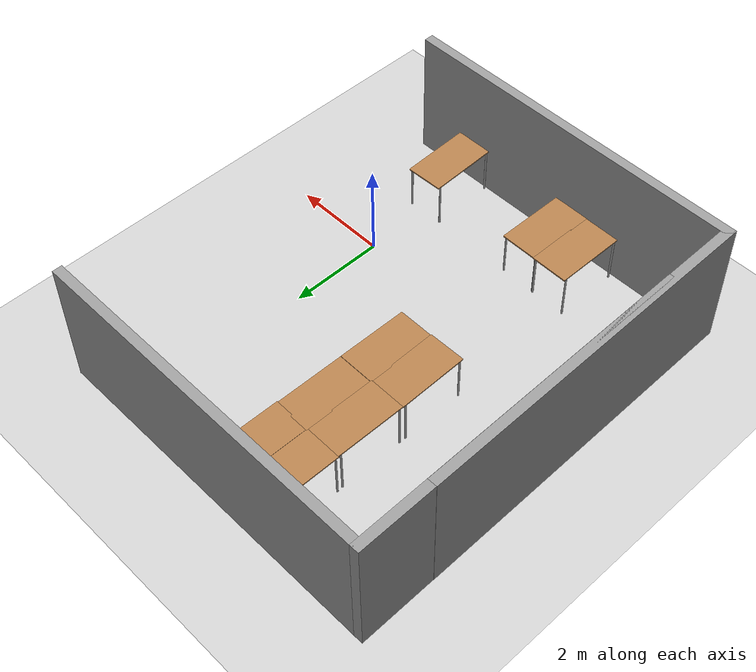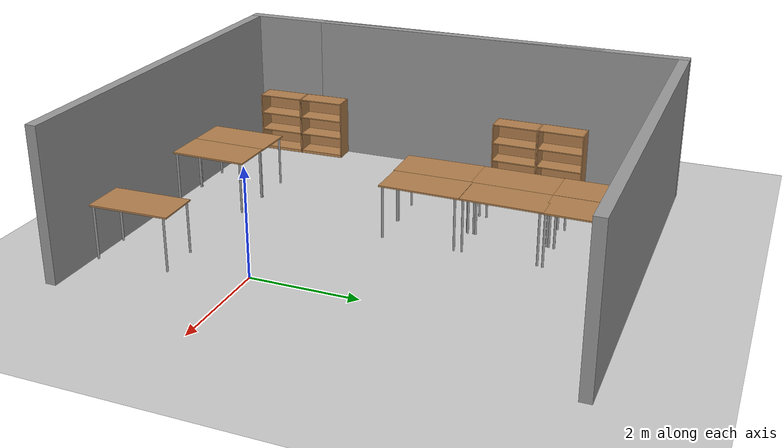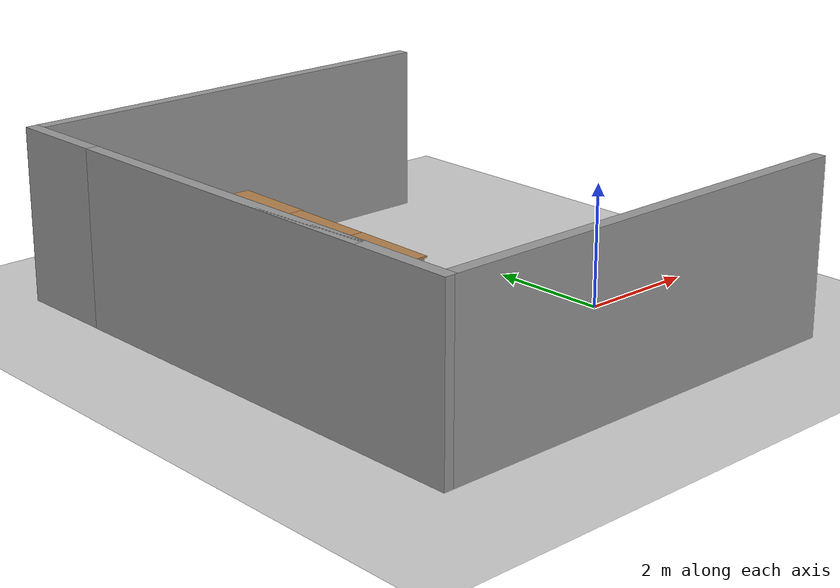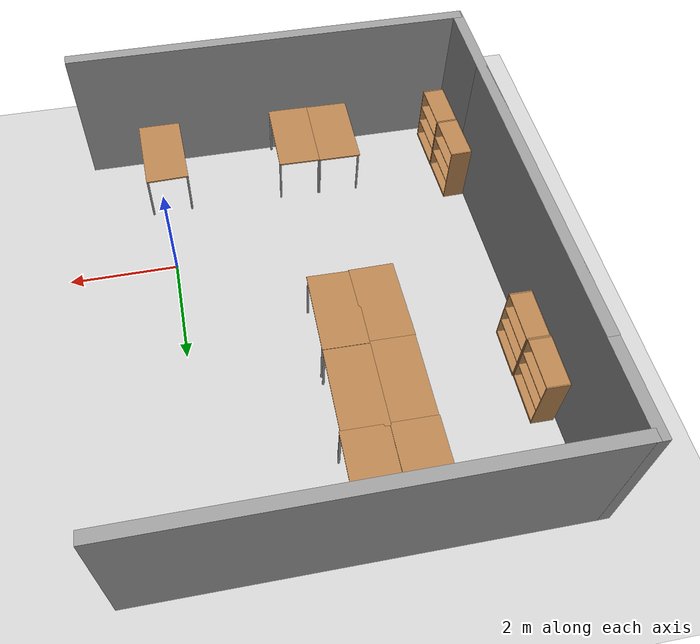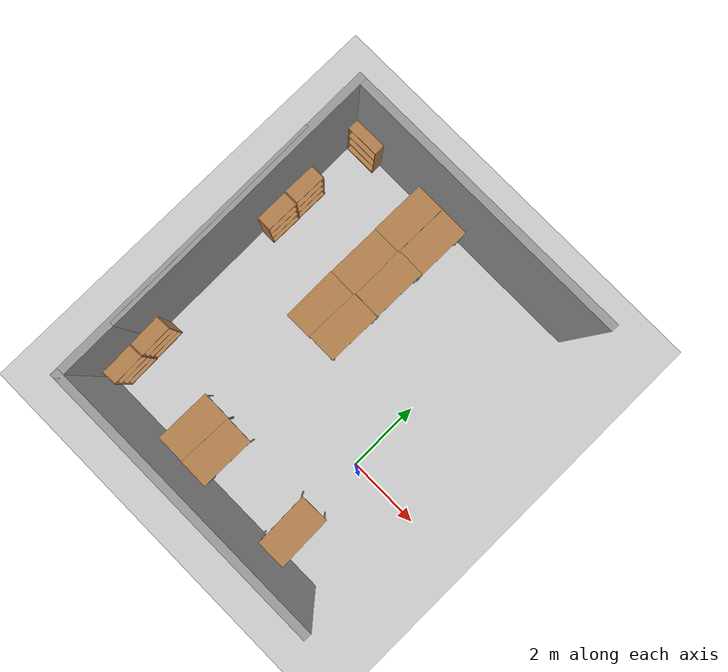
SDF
<sdf version="1.4">
 <world name="default">
  <model name="ground_plane">
   <static>1</static>
   <link name="link">
    <collision name="collision">
     <geometry><plane><normal>0 0 1</normal><size>100 100</size></plane></geometry>
     <surface><friction><ode><mu>100</mu><mu2>50</mu2></ode></friction></surface>
    </collision>
    <visual name="visual">
     <cast_shadows>0</cast_shadows>
     <geometry><plane><normal>0 0 1</normal><size>100 100</size></plane></geometry>
     <material>
      <script><uri>file://media/materials/scripts/gazebo.material</uri><name>Gazebo/Grey</name></script>
     </material>
    </visual>
    <velocity_decay><linear>0</linear><angular>0</angular></velocity_decay>
   </link>
  </model>
  <model name="grey_wall">
   <static>1</static>
   <link name="link">
    <pose>0 0 1.4 0 -0 0</pose>
    <collision name="collision"><geometry><box><size>7.5 0.2 2.8</size></box></geometry></collision>
    <visual name="visual">
     <cast_shadows>0</cast_shadows>
     <geometry><box><size>7.5 0.2 2.8</size></box></geometry>
     <material>
      <script>
       <uri>model://grey_wall/materials/scripts</uri>
       <uri>model://grey_wall/materials/textures</uri>
       <name>vrc/grey_wall</name>
      </script>
     </material>
    </visual>
    <velocity_decay><linear>0</linear><angular>0</angular></velocity_decay>
   </link>
   <pose>-2.2873 5.99729 0 0 -0 0</pose>
  </model>
  <model name="grey_wall_1">
   <static>1</static>
   <link name="link">
    <pose>0 0 1.4 0 -0 0</pose>
    <collision name="collision"><geometry><box><size>7.5 0.2 2.8</size></box></geometry></collision>
    <visual name="visual">
     <cast_shadows>0</cast_shadows>
     <geometry><box><size>7.5 0.2 2.8</size></box></geometry>
     <material>
      <script>
       <uri>model://grey_wall/materials/scripts</uri>
       <uri>model://grey_wall/materials/textures</uri>
       <name>vrc/grey_wall</name>
      </script>
     </material>
    </visual>
    <velocity_decay><linear>0</linear><angular>0</angular></velocity_decay>
   </link>
   <pose>-6.03141 2.34717 0 0 0 -1.56</pose>
  </model>
  <model name="grey_wall_2">
   <static>1</static>
   <link name="link">
    <pose>0 0 1.4 0 -0 0</pose>
    <collision name="collision"><geometry><box><size>7.5 0.2 2.8</size></box></geometry></collision>
    <visual name="visual">
     <cast_shadows>0</cast_shadows>
     <geometry><box><size>7.5 0.2 2.8</size></box></geometry>
     <material>
      <script>
       <uri>model://grey_wall/materials/scripts</uri>
       <uri>model://grey_wall/materials/textures</uri>
       <name>vrc/grey_wall</name>
      </script>
     </material>
    </visual>
    <velocity_decay><linear>0</linear><angular>0</angular></velocity_decay>
   </link>
   <pose>-6.01832 0.721265 0 0 0 -1.56</pose>
  </model>
  <model name="table">
   <static>1</static>
   <link name="link">
    <collision name="surface">
     <pose>0 0 1 0 -0 0</pose>
     <geometry><box><size>1.5 0.8 0.03</size></box></geometry>
     <surface><friction><ode><mu>0.6</mu><mu2>0.6</mu2></ode></friction></surface>
    </collision>
    <visual name="visual1">
     <pose>0 0 1 0 -0 0</pose>
     <geometry><box><size>1.5 0.8 0.03</size></box></geometry>
     <material>
      <script><uri>file://media/materials/scripts/gazebo.material</uri><name>Gazebo/Wood</name></script>
     </material>
    </visual>
    <collision name="front_left_leg">
     <pose>0.68 0.38 0.5 0 -0 0</pose>
     <geometry><cylinder><radius>0.02</radius><length>1</length></cylinder></geometry>
    </collision>
    <visual name="front_left_leg">
     <pose>0.68 0.38 0.5 0 -0 0</pose>
     <geometry><cylinder><radius>0.02</radius><length>1</length></cylinder></geometry>
     <material>
      <script><uri>file://media/materials/scripts/gazebo.material</uri><name>Gazebo/Grey</name></script>
     </material>
    </visual>
    <collision name="front_right_leg">
     <pose>0.68 -0.38 0.5 0 -0 0</pose>
     <geometry><cylinder><radius>0.02</radius><length>1</length></cylinder></geometry>
    </collision>
    <visual name="front_right_leg">
     <pose>0.68 -0.38 0.5 0 -0 0</pose>
     <geometry><cylinder><radius>0.02</radius><length>1</length></cylinder></geometry>
     <material>
      <script><uri>file://media/materials/scripts/gazebo.material</uri><name>Gazebo/Grey</name></script>
     </material>
    </visual>
    <collision name="back_right_leg">
     <pose>-0.68 -0.38 0.5 0 -0 0</pose>
     <geometry><cylinder><radius>0.02</radius><length>1</length></cylinder></geometry>
    </collision>
    <visual name="back_right_leg">
     <pose>-0.68 -0.38 0.5 0 -0 0</pose>
     <geometry><cylinder><radius>0.02</radius><length>1</length></cylinder></geometry>
     <material>
      <script><uri>file://media/materials/scripts/gazebo.material</uri><name>Gazebo/Grey</name></script>
     </material>
    </visual>
    <collision name="back_left_leg">
     <pose>-0.68 0.38 0.5 0 -0 0</pose>
     <geometry><cylinder><radius>0.02</radius><length>1</length></cylinder></geometry>
    </collision>
    <visual name="back_left_leg">
     <pose>-0.68 0.38 0.5 0 -0 0</pose>
     <geometry><cylinder><radius>0.02</radius><length>1</length></cylinder></geometry>
     <material>
      <script><uri>file://media/materials/scripts/gazebo.material</uri><name>Gazebo/Grey</name></script>
     </material>
    </visual>
    <velocity_decay><linear>0</linear><angular>0</angular></velocity_decay>
   </link>
   <pose>-3.39142 5.11799 0 0 -0 1.56319</pose>
  </model>
  <model name="table_0">
   <static>1</static>
   <link name="link">
    <collision name="surface">
     <pose>0 0 1 0 -0 0</pose>
     <geometry><box><size>1.5 0.8 0.03</size></box></geometry>
     <surface><friction><ode><mu>0.6</mu><mu2>0.6</mu2></ode></friction></surface>
    </collision>
    <visual name="visual1">
     <pose>0 0 1 0 -0 0</pose>
     <geometry><box><size>1.5 0.8 0.03</size></box></geometry>
     <material>
      <script><uri>file://media/materials/scripts/gazebo.material</uri><name>Gazebo/Wood</name></script>
     </material>
    </visual>
    <collision name="front_left_leg">
     <pose>0.68 0.38 0.5 0 -0 0</pose>
     <geometry><cylinder><radius>0.02</radius><length>1</length></cylinder></geometry>
    </collision>
    <visual name="front_left_leg">
     <pose>0.68 0.38 0.5 0 -0 0</pose>
     <geometry><cylinder><radius>0.02</radius><length>1</length></cylinder></geometry>
     <material>
      <script><uri>file://media/materials/scripts/gazebo.material</uri><name>Gazebo/Grey</name></script>
     </material>
    </visual>
    <collision name="front_right_leg">
     <pose>0.68 -0.38 0.5 0 -0 0</pose>
     <geometry><cylinder><radius>0.02</radius><length>1</length></cylinder></geometry>
    </collision>
    <visual name="front_right_leg">
     <pose>0.68 -0.38 0.5 0 -0 0</pose>
     <geometry><cylinder><radius>0.02</radius><length>1</length></cylinder></geometry>
     <material>
      <script><uri>file://media/materials/scripts/gazebo.material</uri><name>Gazebo/Grey</name></script>
     </material>
    </visual>
    <collision name="back_right_leg">
     <pose>-0.68 -0.38 0.5 0 -0 0</pose>
     <geometry><cylinder><radius>0.02</radius><length>1</length></cylinder></geometry>
    </collision>
    <visual name="back_right_leg">
     <pose>-0.68 -0.38 0.5 0 -0 0</pose>
     <geometry><cylinder><radius>0.02</radius><length>1</length></cylinder></geometry>
     <material>
      <script><uri>file://media/materials/scripts/gazebo.material</uri><name>Gazebo/Grey</name></script>
     </material>
    </visual>
    <collision name="back_left_leg">
     <pose>-0.68 0.38 0.5 0 -0 0</pose>
     <geometry><cylinder><radius>0.02</radius><length>1</length></cylinder></geometry>
    </collision>
    <visual name="back_left_leg">
     <pose>-0.68 0.38 0.5 0 -0 0</pose>
     <geometry><cylinder><radius>0.02</radius><length>1</length></cylinder></geometry>
     <material>
      <script><uri>file://media/materials/scripts/gazebo.material</uri><name>Gazebo/Grey</name></script>
     </material>
    </visual>
    <velocity_decay><linear>0</linear><angular>0</angular></velocity_decay>
   </link>
   <pose>-2.58708 5.11782 0 0 -0 1.56</pose>
  </model>
  <model name="table_1">
   <static>1</static>
   <link name="link">
    <collision name="surface">
     <pose>0 0 1 0 -0 0</pose>
     <geometry><box><size>1.5 0.8 0.03</size></box></geometry>
     <surface><friction><ode><mu>0.6</mu><mu2>0.6</mu2></ode></friction></surface>
    </collision>
    <visual name="visual1">
     <pose>0 0 1 0 -0 0</pose>
     <geometry><box><size>1.5 0.8 0.03</size></box></geometry>
     <material>
      <script><uri>file://media/materials/scripts/gazebo.material</uri><name>Gazebo/Wood</name></script>
     </material>
    </visual>
    <collision name="front_left_leg">
     <pose>0.68 0.38 0.5 0 -0 0</pose>
     <geometry><cylinder><radius>0.02</radius><length>1</length></cylinder></geometry>
    </collision>
    <visual name="front_left_leg">
     <pose>0.68 0.38 0.5 0 -0 0</pose>
     <geometry><cylinder><radius>0.02</radius><length>1</length></cylinder></geometry>
     <material>
      <script><uri>file://media/materials/scripts/gazebo.material</uri><name>Gazebo/Grey</name></script>
     </material>
    </visual>
    <collision name="front_right_leg">
     <pose>0.68 -0.38 0.5 0 -0 0</pose>
     <geometry><cylinder><radius>0.02</radius><length>1</length></cylinder></geometry>
    </collision>
    <visual name="front_right_leg">
     <pose>0.68 -0.38 0.5 0 -0 0</pose>
     <geometry><cylinder><radius>0.02</radius><length>1</length></cylinder></geometry>
     <material>
      <script><uri>file://media/materials/scripts/gazebo.material</uri><name>Gazebo/Grey</name></script>
     </material>
    </visual>
    <collision name="back_right_leg">
     <pose>-0.68 -0.38 0.5 0 -0 0</pose>
     <geometry><cylinder><radius>0.02</radius><length>1</length></cylinder></geometry>
    </collision>
    <visual name="back_right_leg">
     <pose>-0.68 -0.38 0.5 0 -0 0</pose>
     <geometry><cylinder><radius>0.02</radius><length>1</length></cylinder></geometry>
     <material>
      <script><uri>file://media/materials/scripts/gazebo.material</uri><name>Gazebo/Grey</name></script>
     </material>
    </visual>
    <collision name="back_left_leg">
     <pose>-0.68 0.38 0.5 0 -0 0</pose>
     <geometry><cylinder><radius>0.02</radius><length>1</length></cylinder></geometry>
    </collision>
    <visual name="back_left_leg">
     <pose>-0.68 0.38 0.5 0 -0 0</pose>
     <geometry><cylinder><radius>0.02</radius><length>1</length></cylinder></geometry>
     <material>
      <script><uri>file://media/materials/scripts/gazebo.material</uri><name>Gazebo/Grey</name></script>
     </material>
    </visual>
    <velocity_decay><linear>0</linear><angular>0</angular></velocity_decay>
   </link>
   <pose>-3.39295 3.62708 0 0 -0 1.56</pose>
  </model>
  <model name="table_2">
   <static>1</static>
   <link name="link">
    <collision name="surface">
     <pose>0 0 1 0 -0 0</pose>
     <geometry><box><size>1.5 0.8 0.03</size></box></geometry>
     <surface><friction><ode><mu>0.6</mu><mu2>0.6</mu2></ode></friction></surface>
    </collision>
    <visual name="visual1">
     <pose>0 0 1 0 -0 0</pose>
     <geometry><box><size>1.5 0.8 0.03</size></box></geometry>
     <material>
      <script><uri>file://media/materials/scripts/gazebo.material</uri><name>Gazebo/Wood</name></script>
     </material>
    </visual>
    <collision name="front_left_leg">
     <pose>0.68 0.38 0.5 0 -0 0</pose>
     <geometry><cylinder><radius>0.02</radius><length>1</length></cylinder></geometry>
    </collision>
    <visual name="front_left_leg">
     <pose>0.68 0.38 0.5 0 -0 0</pose>
     <geometry><cylinder><radius>0.02</radius><length>1</length></cylinder></geometry>
     <material>
      <script><uri>file://media/materials/scripts/gazebo.material</uri><name>Gazebo/Grey</name></script>
     </material>
    </visual>
    <collision name="front_right_leg">
     <pose>0.68 -0.38 0.5 0 -0 0</pose>
     <geometry><cylinder><radius>0.02</radius><length>1</length></cylinder></geometry>
    </collision>
    <visual name="front_right_leg">
     <pose>0.68 -0.38 0.5 0 -0 0</pose>
     <geometry><cylinder><radius>0.02</radius><length>1</length></cylinder></geometry>
     <material>
      <script><uri>file://media/materials/scripts/gazebo.material</uri><name>Gazebo/Grey</name></script>
     </material>
    </visual>
    <collision name="back_right_leg">
     <pose>-0.68 -0.38 0.5 0 -0 0</pose>
     <geometry><cylinder><radius>0.02</radius><length>1</length></cylinder></geometry>
    </collision>
    <visual name="back_right_leg">
     <pose>-0.68 -0.38 0.5 0 -0 0</pose>
     <geometry><cylinder><radius>0.02</radius><length>1</length></cylinder></geometry>
     <material>
      <script><uri>file://media/materials/scripts/gazebo.material</uri><name>Gazebo/Grey</name></script>
     </material>
    </visual>
    <collision name="back_left_leg">
     <pose>-0.68 0.38 0.5 0 -0 0</pose>
     <geometry><cylinder><radius>0.02</radius><length>1</length></cylinder></geometry>
    </collision>
    <visual name="back_left_leg">
     <pose>-0.68 0.38 0.5 0 -0 0</pose>
     <geometry><cylinder><radius>0.02</radius><length>1</length></cylinder></geometry>
     <material>
      <script><uri>file://media/materials/scripts/gazebo.material</uri><name>Gazebo/Grey</name></script>
     </material>
    </visual>
    <velocity_decay><linear>0</linear><angular>0</angular></velocity_decay>
   </link>
   <pose>-2.62064 3.65825 0 0 -0 1.56</pose>
  </model>
  <model name="table_3">
   <static>1</static>
   <link name="link">
    <collision name="surface">
     <pose>0 0 1 0 -0 0</pose>
     <geometry><box><size>1.5 0.8 0.03</size></box></geometry>
     <surface><friction><ode><mu>0.6</mu><mu2>0.6</mu2></ode></friction></surface>
    </collision>
    <visual name="visual1">
     <pose>0 0 1 0 -0 0</pose>
     <geometry><box><size>1.5 0.8 0.03</size></box></geometry>
     <material>
      <script><uri>file://media/materials/scripts/gazebo.material</uri><name>Gazebo/Wood</name></script>
     </material>
    </visual>
    <collision name="front_left_leg">
     <pose>0.68 0.38 0.5 0 -0 0</pose>
     <geometry><cylinder><radius>0.02</radius><length>1</length></cylinder></geometry>
    </collision>
    <visual name="front_left_leg">
     <pose>0.68 0.38 0.5 0 -0 0</pose>
     <geometry><cylinder><radius>0.02</radius><length>1</length></cylinder></geometry>
     <material>
      <script><uri>file://media/materials/scripts/gazebo.material</uri><name>Gazebo/Grey</name></script>
     </material>
    </visual>
    <collision name="front_right_leg">
     <pose>0.68 -0.38 0.5 0 -0 0</pose>
     <geometry><cylinder><radius>0.02</radius><length>1</length></cylinder></geometry>
    </collision>
    <visual name="front_right_leg">
     <pose>0.68 -0.38 0.5 0 -0 0</pose>
     <geometry><cylinder><radius>0.02</radius><length>1</length></cylinder></geometry>
     <material>
      <script><uri>file://media/materials/scripts/gazebo.material</uri><name>Gazebo/Grey</name></script>
     </material>
    </visual>
    <collision name="back_right_leg">
     <pose>-0.68 -0.38 0.5 0 -0 0</pose>
     <geometry><cylinder><radius>0.02</radius><length>1</length></cylinder></geometry>
    </collision>
    <visual name="back_right_leg">
     <pose>-0.68 -0.38 0.5 0 -0 0</pose>
     <geometry><cylinder><radius>0.02</radius><length>1</length></cylinder></geometry>
     <material>
      <script><uri>file://media/materials/scripts/gazebo.material</uri><name>Gazebo/Grey</name></script>
     </material>
    </visual>
    <collision name="back_left_leg">
     <pose>-0.68 0.38 0.5 0 -0 0</pose>
     <geometry><cylinder><radius>0.02</radius><length>1</length></cylinder></geometry>
    </collision>
    <visual name="back_left_leg">
     <pose>-0.68 0.38 0.5 0 -0 0</pose>
     <geometry><cylinder><radius>0.02</radius><length>1</length></cylinder></geometry>
     <material>
      <script><uri>file://media/materials/scripts/gazebo.material</uri><name>Gazebo/Grey</name></script>
     </material>
    </visual>
    <velocity_decay><linear>0</linear><angular>0</angular></velocity_decay>
   </link>
   <pose>-3.40002 2.13471 0 0 0 -1.56</pose>
  </model>
  <model name="table_4">
   <static>1</static>
   <link name="link">
    <collision name="surface">
     <pose>0 0 1 0 -0 0</pose>
     <geometry><box><size>1.5 0.8 0.03</size></box></geometry>
     <surface><friction><ode><mu>0.6</mu><mu2>0.6</mu2></ode></friction></surface>
    </collision>
    <visual name="visual1">
     <pose>0 0 1 0 -0 0</pose>
     <geometry><box><size>1.5 0.8 0.03</size></box></geometry>
     <material>
      <script><uri>file://media/materials/scripts/gazebo.material</uri><name>Gazebo/Wood</name></script>
     </material>
    </visual>
    <collision name="front_left_leg">
     <pose>0.68 0.38 0.5 0 -0 0</pose>
     <geometry><cylinder><radius>0.02</radius><length>1</length></cylinder></geometry>
    </collision>
    <visual name="front_left_leg">
     <pose>0.68 0.38 0.5 0 -0 0</pose>
     <geometry><cylinder><radius>0.02</radius><length>1</length></cylinder></geometry>
     <material>
      <script><uri>file://media/materials/scripts/gazebo.material</uri><name>Gazebo/Grey</name></script>
     </material>
    </visual>
    <collision name="front_right_leg">
     <pose>0.68 -0.38 0.5 0 -0 0</pose>
     <geometry><cylinder><radius>0.02</radius><length>1</length></cylinder></geometry>
    </collision>
    <visual name="front_right_leg">
     <pose>0.68 -0.38 0.5 0 -0 0</pose>
     <geometry><cylinder><radius>0.02</radius><length>1</length></cylinder></geometry>
     <material>
      <script><uri>file://media/materials/scripts/gazebo.material</uri><name>Gazebo/Grey</name></script>
     </material>
    </visual>
    <collision name="back_right_leg">
     <pose>-0.68 -0.38 0.5 0 -0 0</pose>
     <geometry><cylinder><radius>0.02</radius><length>1</length></cylinder></geometry>
    </collision>
    <visual name="back_right_leg">
     <pose>-0.68 -0.38 0.5 0 -0 0</pose>
     <geometry><cylinder><radius>0.02</radius><length>1</length></cylinder></geometry>
     <material>
      <script><uri>file://media/materials/scripts/gazebo.material</uri><name>Gazebo/Grey</name></script>
     </material>
    </visual>
    <collision name="back_left_leg">
     <pose>-0.68 0.38 0.5 0 -0 0</pose>
     <geometry><cylinder><radius>0.02</radius><length>1</length></cylinder></geometry>
    </collision>
    <visual name="back_left_leg">
     <pose>-0.68 0.38 0.5 0 -0 0</pose>
     <geometry><cylinder><radius>0.02</radius><length>1</length></cylinder></geometry>
     <material>
      <script><uri>file://media/materials/scripts/gazebo.material</uri><name>Gazebo/Grey</name></script>
     </material>
    </visual>
    <velocity_decay><linear>0</linear><angular>0</angular></velocity_decay>
   </link>
   <pose>-2.63477 2.15257 0 0 -0 1.56</pose>
  </model>
  <model name="bookshelf">
   <static>1</static>
   <link name="link">
    <inertial><mass>1</mass></inertial>
    <collision name="back">
     <pose>0 0.005 0.6 0 -0 0</pose>
     <geometry><box><size>0.9 0.01 1.2</size></box></geometry>
    </collision>
    <visual name="visual1">
     <pose>0 0.005 0.6 0 -0 0</pose>
     <geometry><box><size>0.9 0.01 1.2</size></box></geometry>
     <material>
      <script><uri>file://media/materials/scripts/gazebo.material</uri><name>Gazebo/Wood</name></script>
     </material>
    </visual>
    <collision name="left_side">
     <pose>0.45 -0.195 0.6 0 -0 0</pose>
     <geometry><box><size>0.02 0.4 1.2</size></box></geometry>
    </collision>
    <visual name="visual2">
     <pose>0.45 -0.195 0.6 0 -0 0</pose>
     <geometry><box><size>0.02 0.4 1.2</size></box></geometry>
     <material>
      <script><uri>file://media/materials/scripts/gazebo.material</uri><name>Gazebo/Wood</name></script>
     </material>
    </visual>
    <collision name="right_side">
     <pose>-0.45 -0.195 0.6 0 -0 0</pose>
     <geometry><box><size>0.02 0.4 1.2</size></box></geometry>
    </collision>
    <visual name="visual3">
     <pose>-0.45 -0.195 0.6 0 -0 0</pose>
     <geometry><box><size>0.02 0.4 1.2</size></box></geometry>
     <material>
      <script><uri>file://media/materials/scripts/gazebo.material</uri><name>Gazebo/Wood</name></script>
     </material>
    </visual>
    <collision name="bottom">
     <pose>0 -0.195 0.03 0 -0 0</pose>
     <geometry><box><size>0.88 0.4 0.06</size></box></geometry>
    </collision>
    <visual name="visual4">
     <pose>0 -0.195 0.03 0 -0 0</pose>
     <geometry><box><size>0.88 0.4 0.06</size></box></geometry>
     <material>
      <script><uri>file://media/materials/scripts/gazebo.material</uri><name>Gazebo/Wood</name></script>
     </material>
    </visual>
    <collision name="top">
     <pose>0 -0.195 1.19 0 -0 0</pose>
     <geometry><box><size>0.88 0.4 0.02</size></box></geometry>
    </collision>
    <visual name="visual5">
     <pose>0 -0.195 1.19 0 -0 0</pose>
     <geometry><box><size>0.88 0.4 0.02</size></box></geometry>
     <material>
      <script><uri>file://media/materials/scripts/gazebo.material</uri><name>Gazebo/Wood</name></script>
     </material>
    </visual>
    <collision name="low_shelf">
     <pose>0 -0.195 0.43 0 -0 0</pose>
     <geometry><box><size>0.88 0.4 0.02</size></box></geometry>
    </collision>
    <visual name="visual6">
     <pose>0 -0.195 0.43 0 -0 0</pose>
     <geometry><box><size>0.88 0.4 0.02</size></box></geometry>
     <material>
      <script><uri>file://media/materials/scripts/gazebo.material</uri><name>Gazebo/Wood</name></script>
     </material>
    </visual>
    <collision name="high_shelf">
     <pose>0 -0.195 0.8 0 -0 0</pose>
     <geometry><box><size>0.88 0.4 0.02</size></box></geometry>
    </collision>
    <visual name="visual7">
     <pose>0 -0.195 0.8 0 -0 0</pose>
     <geometry><box><size>0.88 0.4 0.02</size></box></geometry>
     <material>
      <script><uri>file://media/materials/scripts/gazebo.material</uri><name>Gazebo/Wood</name></script>
     </material>
    </visual>
    <velocity_decay><linear>0</linear><angular>0</angular></velocity_decay>
   </link>
   <pose>-5.83555 -2.19567 0 0 -0 1.6</pose>
  </model>
  <model name="bookshelf_0">
   <static>1</static>
   <link name="link">
    <inertial><mass>1</mass></inertial>
    <collision name="back">
     <pose>0 0.005 0.6 0 -0 0</pose>
     <geometry><box><size>0.9 0.01 1.2</size></box></geometry>
    </collision>
    <visual name="visual1">
     <pose>0 0.005 0.6 0 -0 0</pose>
     <geometry><box><size>0.9 0.01 1.2</size></box></geometry>
     <material>
      <script><uri>file://media/materials/scripts/gazebo.material</uri><name>Gazebo/Wood</name></script>
     </material>
    </visual>
    <collision name="left_side">
     <pose>0.45 -0.195 0.6 0 -0 0</pose>
     <geometry><box><size>0.02 0.4 1.2</size></box></geometry>
    </collision>
    <visual name="visual2">
     <pose>0.45 -0.195 0.6 0 -0 0</pose>
     <geometry><box><size>0.02 0.4 1.2</size></box></geometry>
     <material>
      <script><uri>file://media/materials/scripts/gazebo.material</uri><name>Gazebo/Wood</name></script>
     </material>
    </visual>
    <collision name="right_side">
     <pose>-0.45 -0.195 0.6 0 -0 0</pose>
     <geometry><box><size>0.02 0.4 1.2</size></box></geometry>
    </collision>
    <visual name="visual3">
     <pose>-0.45 -0.195 0.6 0 -0 0</pose>
     <geometry><box><size>0.02 0.4 1.2</size></box></geometry>
     <material>
      <script><uri>file://media/materials/scripts/gazebo.material</uri><name>Gazebo/Wood</name></script>
     </material>
    </visual>
    <collision name="bottom">
     <pose>0 -0.195 0.03 0 -0 0</pose>
     <geometry><box><size>0.88 0.4 0.06</size></box></geometry>
    </collision>
    <visual name="visual4">
     <pose>0 -0.195 0.03 0 -0 0</pose>
     <geometry><box><size>0.88 0.4 0.06</size></box></geometry>
     <material>
      <script><uri>file://media/materials/scripts/gazebo.material</uri><name>Gazebo/Wood</name></script>
     </material>
    </visual>
    <collision name="top">
     <pose>0 -0.195 1.19 0 -0 0</pose>
     <geometry><box><size>0.88 0.4 0.02</size></box></geometry>
    </collision>
    <visual name="visual5">
     <pose>0 -0.195 1.19 0 -0 0</pose>
     <geometry><box><size>0.88 0.4 0.02</size></box></geometry>
     <material>
      <script><uri>file://media/materials/scripts/gazebo.material</uri><name>Gazebo/Wood</name></script>
     </material>
    </visual>
    <collision name="low_shelf">
     <pose>0 -0.195 0.43 0 -0 0</pose>
     <geometry><box><size>0.88 0.4 0.02</size></box></geometry>
    </collision>
    <visual name="visual6">
     <pose>0 -0.195 0.43 0 -0 0</pose>
     <geometry><box><size>0.88 0.4 0.02</size></box></geometry>
     <material>
      <script><uri>file://media/materials/scripts/gazebo.material</uri><name>Gazebo/Wood</name></script>
     </material>
    </visual>
    <collision name="high_shelf">
     <pose>0 -0.195 0.8 0 -0 0</pose>
     <geometry><box><size>0.88 0.4 0.02</size></box></geometry>
    </collision>
    <visual name="visual7">
     <pose>0 -0.195 0.8 0 -0 0</pose>
     <geometry><box><size>0.88 0.4 0.02</size></box></geometry>
     <material>
      <script><uri>file://media/materials/scripts/gazebo.material</uri><name>Gazebo/Wood</name></script>
     </material>
    </visual>
    <velocity_decay><linear>0</linear><angular>0</angular></velocity_decay>
   </link>
   <pose>-5.86607 -1.27752 0 0 -0 1.6</pose>
  </model>
  <model name="grey_wall_3">
   <static>1</static>
   <link name="link">
    <pose>0 0 1.4 0 -0 0</pose>
    <collision name="collision"><geometry><box><size>7.5 0.2 2.8</size></box></geometry></collision>
    <visual name="visual">
     <cast_shadows>0</cast_shadows>
     <geometry><box><size>7.5 0.2 2.8</size></box></geometry>
     <material>
      <script>
       <uri>model://grey_wall/materials/scripts</uri>
       <uri>model://grey_wall/materials/textures</uri>
       <name>vrc/grey_wall</name>
      </script>
     </material>
    </visual>
    <velocity_decay><linear>0</linear><angular>0</angular></velocity_decay>
   </link>
   <pose>-2.30738 -2.92793 0 0 -0 0</pose>
  </model>
  <model name="table_11">
   <static>1</static>
   <link name="link">
    <collision name="surface">
     <pose>0 0 1 0 -0 0</pose>
     <geometry><box><size>1.5 0.8 0.03</size></box></geometry>
     <surface><friction><ode><mu>0.6</mu><mu2>0.6</mu2></ode></friction></surface>
    </collision>
    <visual name="visual1">
     <pose>0 0 1 0 -0 0</pose>
     <geometry><box><size>1.5 0.8 0.03</size></box></geometry>
     <material>
      <script><uri>file://media/materials/scripts/gazebo.material</uri><name>Gazebo/Wood</name></script>
     </material>
    </visual>
    <collision name="front_left_leg">
     <pose>0.68 0.38 0.5 0 -0 0</pose>
     <geometry><cylinder><radius>0.02</radius><length>1</length></cylinder></geometry>
    </collision>
    <visual name="front_left_leg">
     <pose>0.68 0.38 0.5 0 -0 0</pose>
     <geometry><cylinder><radius>0.02</radius><length>1</length></cylinder></geometry>
     <material>
      <script><uri>file://media/materials/scripts/gazebo.material</uri><name>Gazebo/Grey</name></script>
     </material>
    </visual>
    <collision name="front_right_leg">
     <pose>0.68 -0.38 0.5 0 -0 0</pose>
     <geometry><cylinder><radius>0.02</radius><length>1</length></cylinder></geometry>
    </collision>
    <visual name="front_right_leg">
     <pose>0.68 -0.38 0.5 0 -0 0</pose>
     <geometry><cylinder><radius>0.02</radius><length>1</length></cylinder></geometry>
     <material>
      <script><uri>file://media/materials/scripts/gazebo.material</uri><name>Gazebo/Grey</name></script>
     </material>
    </visual>
    <collision name="back_right_leg">
     <pose>-0.68 -0.38 0.5 0 -0 0</pose>
     <geometry><cylinder><radius>0.02</radius><length>1</length></cylinder></geometry>
    </collision>
    <visual name="back_right_leg">
     <pose>-0.68 -0.38 0.5 0 -0 0</pose>
     <geometry><cylinder><radius>0.02</radius><length>1</length></cylinder></geometry>
     <material>
      <script><uri>file://media/materials/scripts/gazebo.material</uri><name>Gazebo/Grey</name></script>
     </material>
    </visual>
    <collision name="back_left_leg">
     <pose>-0.68 0.38 0.5 0 -0 0</pose>
     <geometry><cylinder><radius>0.02</radius><length>1</length></cylinder></geometry>
    </collision>
    <visual name="back_left_leg">
     <pose>-0.68 0.38 0.5 0 -0 0</pose>
     <geometry><cylinder><radius>0.02</radius><length>1</length></cylinder></geometry>
     <material>
      <script><uri>file://media/materials/scripts/gazebo.material</uri><name>Gazebo/Grey</name></script>
     </material>
    </visual>
    <velocity_decay><linear>0</linear><angular>0</angular></velocity_decay>
   </link>
   <pose>-3.4162 -2.06005 0 0 -0 1.56</pose>
  </model>
  <model name="table_12">
   <static>1</static>
   <link name="link">
    <collision name="surface">
     <pose>0 0 1 0 -0 0</pose>
     <geometry><box><size>1.5 0.8 0.03</size></box></geometry>
     <surface><friction><ode><mu>0.6</mu><mu2>0.6</mu2></ode></friction></surface>
    </collision>
    <visual name="visual1">
     <pose>0 0 1 0 -0 0</pose>
     <geometry><box><size>1.5 0.8 0.03</size></box></geometry>
     <material>
      <script><uri>file://media/materials/scripts/gazebo.material</uri><name>Gazebo/Wood</name></script>
     </material>
    </visual>
    <collision name="front_left_leg">
     <pose>0.68 0.38 0.5 0 -0 0</pose>
     <geometry><cylinder><radius>0.02</radius><length>1</length></cylinder></geometry>
    </collision>
    <visual name="front_left_leg">
     <pose>0.68 0.38 0.5 0 -0 0</pose>
     <geometry><cylinder><radius>0.02</radius><length>1</length></cylinder></geometry>
     <material>
      <script><uri>file://media/materials/scripts/gazebo.material</uri><name>Gazebo/Grey</name></script>
     </material>
    </visual>
    <collision name="front_right_leg">
     <pose>0.68 -0.38 0.5 0 -0 0</pose>
     <geometry><cylinder><radius>0.02</radius><length>1</length></cylinder></geometry>
    </collision>
    <visual name="front_right_leg">
     <pose>0.68 -0.38 0.5 0 -0 0</pose>
     <geometry><cylinder><radius>0.02</radius><length>1</length></cylinder></geometry>
     <material>
      <script><uri>file://media/materials/scripts/gazebo.material</uri><name>Gazebo/Grey</name></script>
     </material>
    </visual>
    <collision name="back_right_leg">
     <pose>-0.68 -0.38 0.5 0 -0 0</pose>
     <geometry><cylinder><radius>0.02</radius><length>1</length></cylinder></geometry>
    </collision>
    <visual name="back_right_leg">
     <pose>-0.68 -0.38 0.5 0 -0 0</pose>
     <geometry><cylinder><radius>0.02</radius><length>1</length></cylinder></geometry>
     <material>
      <script><uri>file://media/materials/scripts/gazebo.material</uri><name>Gazebo/Grey</name></script>
     </material>
    </visual>
    <collision name="back_left_leg">
     <pose>-0.68 0.38 0.5 0 -0 0</pose>
     <geometry><cylinder><radius>0.02</radius><length>1</length></cylinder></geometry>
    </collision>
    <visual name="back_left_leg">
     <pose>-0.68 0.38 0.5 0 -0 0</pose>
     <geometry><cylinder><radius>0.02</radius><length>1</length></cylinder></geometry>
     <material>
      <script><uri>file://media/materials/scripts/gazebo.material</uri><name>Gazebo/Grey</name></script>
     </material>
    </visual>
    <velocity_decay><linear>0</linear><angular>0</angular></velocity_decay>
   </link>
   <pose>-2.63578 -2.07529 0 0 -0 1.56</pose>
  </model>
  <model name="table_13">
   <static>1</static>
   <link name="link">
    <collision name="surface">
     <pose>0 0 1 0 -0 0</pose>
     <geometry><box><size>1.5 0.8 0.03</size></box></geometry>
     <surface><friction><ode><mu>0.6</mu><mu2>0.6</mu2></ode></friction></surface>
    </collision>
    <visual name="visual1">
     <pose>0 0 1 0 -0 0</pose>
     <geometry><box><size>1.5 0.8 0.03</size></box></geometry>
     <material>
      <script><uri>file://media/materials/scripts/gazebo.material</uri><name>Gazebo/Wood</name></script>
     </material>
    </visual>
    <collision name="front_left_leg">
     <pose>0.68 0.38 0.5 0 -0 0</pose>
     <geometry><cylinder><radius>0.02</radius><length>1</length></cylinder></geometry>
    </collision>
    <visual name="front_left_leg">
     <pose>0.68 0.38 0.5 0 -0 0</pose>
     <geometry><cylinder><radius>0.02</radius><length>1</length></cylinder></geometry>
     <material>
      <script><uri>file://media/materials/scripts/gazebo.material</uri><name>Gazebo/Grey</name></script>
     </material>
    </visual>
    <collision name="front_right_leg">
     <pose>0.68 -0.38 0.5 0 -0 0</pose>
     <geometry><cylinder><radius>0.02</radius><length>1</length></cylinder></geometry>
    </collision>
    <visual name="front_right_leg">
     <pose>0.68 -0.38 0.5 0 -0 0</pose>
     <geometry><cylinder><radius>0.02</radius><length>1</length></cylinder></geometry>
     <material>
      <script><uri>file://media/materials/scripts/gazebo.material</uri><name>Gazebo/Grey</name></script>
     </material>
    </visual>
    <collision name="back_right_leg">
     <pose>-0.68 -0.38 0.5 0 -0 0</pose>
     <geometry><cylinder><radius>0.02</radius><length>1</length></cylinder></geometry>
    </collision>
    <visual name="back_right_leg">
     <pose>-0.68 -0.38 0.5 0 -0 0</pose>
     <geometry><cylinder><radius>0.02</radius><length>1</length></cylinder></geometry>
     <material>
      <script><uri>file://media/materials/scripts/gazebo.material</uri><name>Gazebo/Grey</name></script>
     </material>
    </visual>
    <collision name="back_left_leg">
     <pose>-0.68 0.38 0.5 0 -0 0</pose>
     <geometry><cylinder><radius>0.02</radius><length>1</length></cylinder></geometry>
    </collision>
    <visual name="back_left_leg">
     <pose>-0.68 0.38 0.5 0 -0 0</pose>
     <geometry><cylinder><radius>0.02</radius><length>1</length></cylinder></geometry>
     <material>
      <script><uri>file://media/materials/scripts/gazebo.material</uri><name>Gazebo/Grey</name></script>
     </material>
    </visual>
    <velocity_decay><linear>0</linear><angular>0</angular></velocity_decay>
   </link>
   <pose>-0.0401 -2.08628 0 0 -0 1.6</pose>
  </model>
  <model name="bookshelf_5">
   <static>1</static>
   <link name="link">
    <inertial><mass>1</mass></inertial>
    <collision name="back">
     <pose>0 0.005 0.6 0 -0 0</pose>
     <geometry><box><size>0.9 0.01 1.2</size></box></geometry>
    </collision>
    <visual name="visual1">
     <pose>0 0.005 0.6 0 -0 0</pose>
     <geometry><box><size>0.9 0.01 1.2</size></box></geometry>
     <material>
      <script><uri>file://media/materials/scripts/gazebo.material</uri><name>Gazebo/Wood</name></script>
     </material>
    </visual>
    <collision name="left_side">
     <pose>0.45 -0.195 0.6 0 -0 0</pose>
     <geometry><box><size>0.02 0.4 1.2</size></box></geometry>
    </collision>
    <visual name="visual2">
     <pose>0.45 -0.195 0.6 0 -0 0</pose>
     <geometry><box><size>0.02 0.4 1.2</size></box></geometry>
     <material>
      <script><uri>file://media/materials/scripts/gazebo.material</uri><name>Gazebo/Wood</name></script>
     </material>
    </visual>
    <collision name="right_side">
     <pose>-0.45 -0.195 0.6 0 -0 0</pose>
     <geometry><box><size>0.02 0.4 1.2</size></box></geometry>
    </collision>
    <visual name="visual3">
     <pose>-0.45 -0.195 0.6 0 -0 0</pose>
     <geometry><box><size>0.02 0.4 1.2</size></box></geometry>
     <material>
      <script><uri>file://media/materials/scripts/gazebo.material</uri><name>Gazebo/Wood</name></script>
     </material>
    </visual>
    <collision name="bottom">
     <pose>0 -0.195 0.03 0 -0 0</pose>
     <geometry><box><size>0.88 0.4 0.06</size></box></geometry>
    </collision>
    <visual name="visual4">
     <pose>0 -0.195 0.03 0 -0 0</pose>
     <geometry><box><size>0.88 0.4 0.06</size></box></geometry>
     <material>
      <script><uri>file://media/materials/scripts/gazebo.material</uri><name>Gazebo/Wood</name></script>
     </material>
    </visual>
    <collision name="top">
     <pose>0 -0.195 1.19 0 -0 0</pose>
     <geometry><box><size>0.88 0.4 0.02</size></box></geometry>
    </collision>
    <visual name="visual5">
     <pose>0 -0.195 1.19 0 -0 0</pose>
     <geometry><box><size>0.88 0.4 0.02</size></box></geometry>
     <material>
      <script><uri>file://media/materials/scripts/gazebo.material</uri><name>Gazebo/Wood</name></script>
     </material>
    </visual>
    <collision name="low_shelf">
     <pose>0 -0.195 0.43 0 -0 0</pose>
     <geometry><box><size>0.88 0.4 0.02</size></box></geometry>
    </collision>
    <visual name="visual6">
     <pose>0 -0.195 0.43 0 -0 0</pose>
     <geometry><box><size>0.88 0.4 0.02</size></box></geometry>
     <material>
      <script><uri>file://media/materials/scripts/gazebo.material</uri><name>Gazebo/Wood</name></script>
     </material>
    </visual>
    <collision name="high_shelf">
     <pose>0 -0.195 0.8 0 -0 0</pose>
     <geometry><box><size>0.88 0.4 0.02</size></box></geometry>
    </collision>
    <visual name="visual7">
     <pose>0 -0.195 0.8 0 -0 0</pose>
     <geometry><box><size>0.88 0.4 0.02</size></box></geometry>
     <material>
      <script><uri>file://media/materials/scripts/gazebo.material</uri><name>Gazebo/Wood</name></script>
     </material>
    </visual>
    <velocity_decay><linear>0</linear><angular>0</angular></velocity_decay>
   </link>
   <pose>-5.50577 6 0 0 -0 0</pose>
  </model>
  <model name="bookshelf_6">
   <static>1</static>
   <link name="link">
    <inertial><mass>1</mass></inertial>
    <collision name="back">
     <pose>0 0.005 0.6 0 -0 0</pose>
     <geometry><box><size>0.9 0.01 1.2</size></box></geometry>
    </collision>
    <visual name="visual1">
     <pose>0 0.005 0.6 0 -0 0</pose>
     <geometry><box><size>0.9 0.01 1.2</size></box></geometry>
     <material>
      <script><uri>file://media/materials/scripts/gazebo.material</uri><name>Gazebo/Wood</name></script>
     </material>
    </visual>
    <collision name="left_side">
     <pose>0.45 -0.195 0.6 0 -0 0</pose>
     <geometry><box><size>0.02 0.4 1.2</size></box></geometry>
    </collision>
    <visual name="visual2">
     <pose>0.45 -0.195 0.6 0 -0 0</pose>
     <geometry><box><size>0.02 0.4 1.2</size></box></geometry>
     <material>
      <script><uri>file://media/materials/scripts/gazebo.material</uri><name>Gazebo/Wood</name></script>
     </material>
    </visual>
    <collision name="right_side">
     <pose>-0.45 -0.195 0.6 0 -0 0</pose>
     <geometry><box><size>0.02 0.4 1.2</size></box></geometry>
    </collision>
    <visual name="visual3">
     <pose>-0.45 -0.195 0.6 0 -0 0</pose>
     <geometry><box><size>0.02 0.4 1.2</size></box></geometry>
     <material>
      <script><uri>file://media/materials/scripts/gazebo.material</uri><name>Gazebo/Wood</name></script>
     </material>
    </visual>
    <collision name="bottom">
     <pose>0 -0.195 0.03 0 -0 0</pose>
     <geometry><box><size>0.88 0.4 0.06</size></box></geometry>
    </collision>
    <visual name="visual4">
     <pose>0 -0.195 0.03 0 -0 0</pose>
     <geometry><box><size>0.88 0.4 0.06</size></box></geometry>
     <material>
      <script><uri>file://media/materials/scripts/gazebo.material</uri><name>Gazebo/Wood</name></script>
     </material>
    </visual>
    <collision name="top">
     <pose>0 -0.195 1.19 0 -0 0</pose>
     <geometry><box><size>0.88 0.4 0.02</size></box></geometry>
    </collision>
    <visual name="visual5">
     <pose>0 -0.195 1.19 0 -0 0</pose>
     <geometry><box><size>0.88 0.4 0.02</size></box></geometry>
     <material>
      <script><uri>file://media/materials/scripts/gazebo.material</uri><name>Gazebo/Wood</name></script>
     </material>
    </visual>
    <collision name="low_shelf">
     <pose>0 -0.195 0.43 0 -0 0</pose>
     <geometry><box><size>0.88 0.4 0.02</size></box></geometry>
    </collision>
    <visual name="visual6">
     <pose>0 -0.195 0.43 0 -0 0</pose>
     <geometry><box><size>0.88 0.4 0.02</size></box></geometry>
     <material>
      <script><uri>file://media/materials/scripts/gazebo.material</uri><name>Gazebo/Wood</name></script>
     </material>
    </visual>
    <collision name="high_shelf">
     <pose>0 -0.195 0.8 0 -0 0</pose>
     <geometry><box><size>0.88 0.4 0.02</size></box></geometry>
    </collision>
    <visual name="visual7">
     <pose>0 -0.195 0.8 0 -0 0</pose>
     <geometry><box><size>0.88 0.4 0.02</size></box></geometry>
     <material>
      <script><uri>file://media/materials/scripts/gazebo.material</uri><name>Gazebo/Wood</name></script>
     </material>
    </visual>
    <velocity_decay><linear>0</linear><angular>0</angular></velocity_decay>
   </link>
   <pose>-5.90625 2.95779 0 0 -0 1.56</pose>
  </model>
  <model name="bookshelf_7">
   <static>1</static>
   <link name="link">
    <inertial><mass>1</mass></inertial>
    <collision name="back">
     <pose>0 0.005 0.6 0 -0 0</pose>
     <geometry><box><size>0.9 0.01 1.2</size></box></geometry>
    </collision>
    <visual name="visual1">
     <pose>0 0.005 0.6 0 -0 0</pose>
     <geometry><box><size>0.9 0.01 1.2</size></box></geometry>
     <material>
      <script><uri>file://media/materials/scripts/gazebo.material</uri><name>Gazebo/Wood</name></script>
     </material>
    </visual>
    <collision name="left_side">
     <pose>0.45 -0.195 0.6 0 -0 0</pose>
     <geometry><box><size>0.02 0.4 1.2</size></box></geometry>
    </collision>
    <visual name="visual2">
     <pose>0.45 -0.195 0.6 0 -0 0</pose>
     <geometry><box><size>0.02 0.4 1.2</size></box></geometry>
     <material>
      <script><uri>file://media/materials/scripts/gazebo.material</uri><name>Gazebo/Wood</name></script>
     </material>
    </visual>
    <collision name="right_side">
     <pose>-0.45 -0.195 0.6 0 -0 0</pose>
     <geometry><box><size>0.02 0.4 1.2</size></box></geometry>
    </collision>
    <visual name="visual3">
     <pose>-0.45 -0.195 0.6 0 -0 0</pose>
     <geometry><box><size>0.02 0.4 1.2</size></box></geometry>
     <material>
      <script><uri>file://media/materials/scripts/gazebo.material</uri><name>Gazebo/Wood</name></script>
     </material>
    </visual>
    <collision name="bottom">
     <pose>0 -0.195 0.03 0 -0 0</pose>
     <geometry><box><size>0.88 0.4 0.06</size></box></geometry>
    </collision>
    <visual name="visual4">
     <pose>0 -0.195 0.03 0 -0 0</pose>
     <geometry><box><size>0.88 0.4 0.06</size></box></geometry>
     <material>
      <script><uri>file://media/materials/scripts/gazebo.material</uri><name>Gazebo/Wood</name></script>
     </material>
    </visual>
    <collision name="top">
     <pose>0 -0.195 1.19 0 -0 0</pose>
     <geometry><box><size>0.88 0.4 0.02</size></box></geometry>
    </collision>
    <visual name="visual5">
     <pose>0 -0.195 1.19 0 -0 0</pose>
     <geometry><box><size>0.88 0.4 0.02</size></box></geometry>
     <material>
      <script><uri>file://media/materials/scripts/gazebo.material</uri><name>Gazebo/Wood</name></script>
     </material>
    </visual>
    <collision name="low_shelf">
     <pose>0 -0.195 0.43 0 -0 0</pose>
     <geometry><box><size>0.88 0.4 0.02</size></box></geometry>
    </collision>
    <visual name="visual6">
     <pose>0 -0.195 0.43 0 -0 0</pose>
     <geometry><box><size>0.88 0.4 0.02</size></box></geometry>
     <material>
      <script><uri>file://media/materials/scripts/gazebo.material</uri><name>Gazebo/Wood</name></script>
     </material>
    </visual>
    <collision name="high_shelf">
     <pose>0 -0.195 0.8 0 -0 0</pose>
     <geometry><box><size>0.88 0.4 0.02</size></box></geometry>
    </collision>
    <visual name="visual7">
     <pose>0 -0.195 0.8 0 -0 0</pose>
     <geometry><box><size>0.88 0.4 0.02</size></box></geometry>
     <material>
      <script><uri>file://media/materials/scripts/gazebo.material</uri><name>Gazebo/Wood</name></script>
     </material>
    </visual>
    <velocity_decay><linear>0</linear><angular>0</angular></velocity_decay>
   </link>
   <pose>-5.91089 3.87709 0 0 -0 1.56</pose>
  </model>
 </world>
</sdf>
